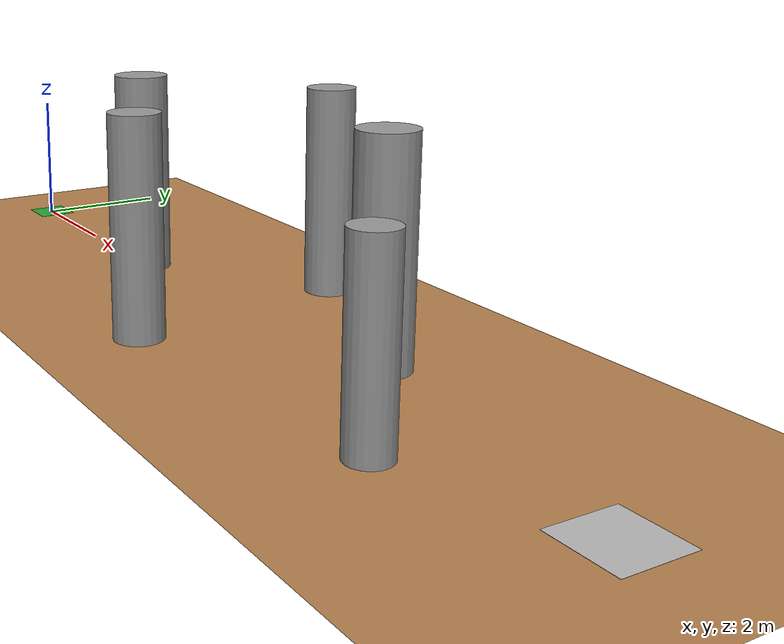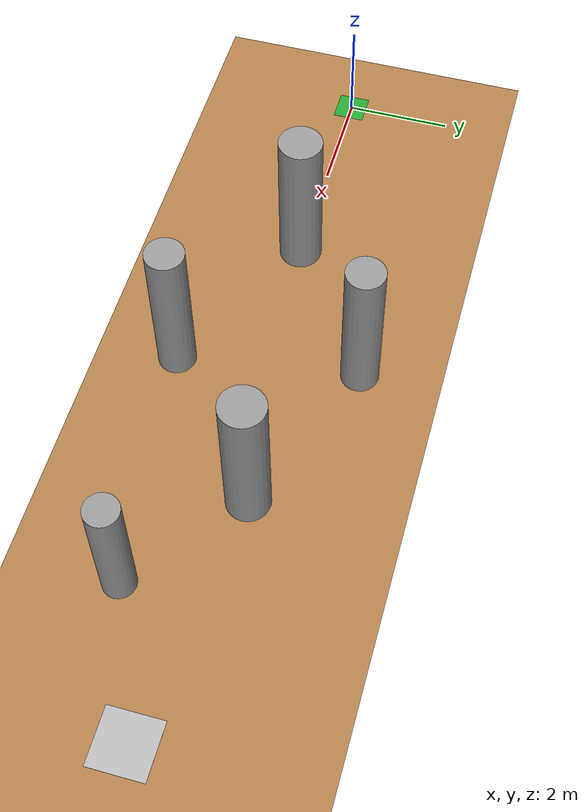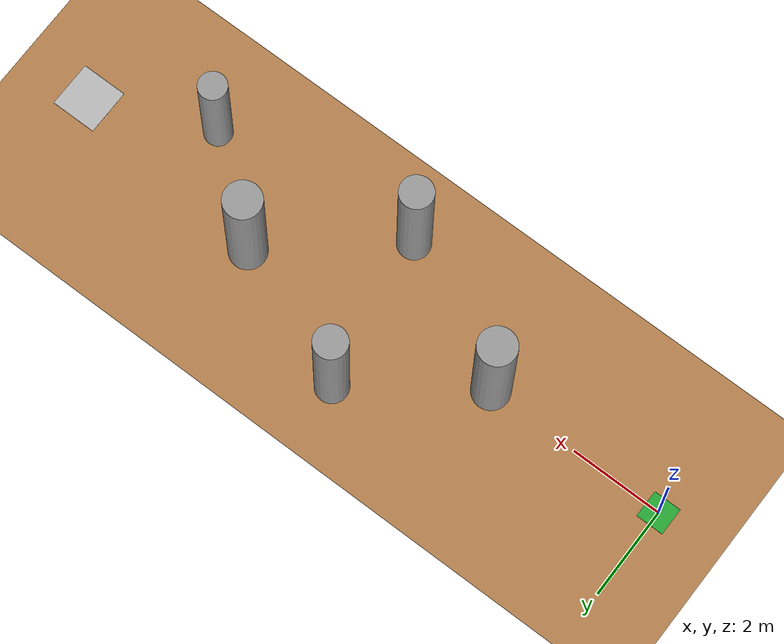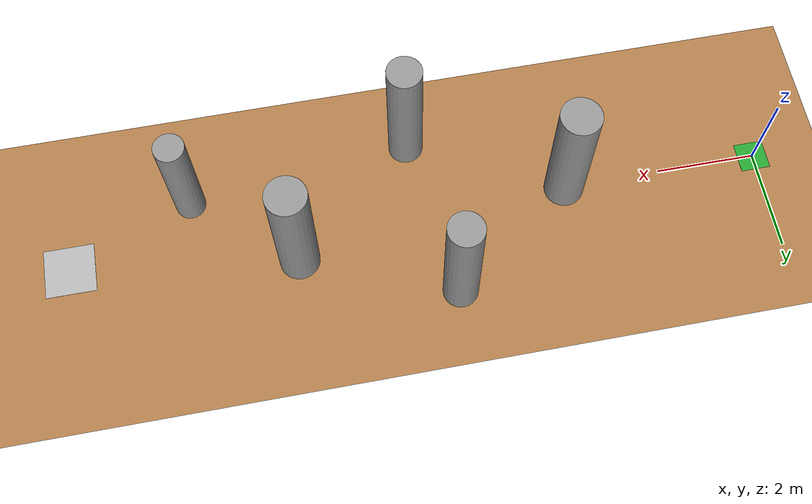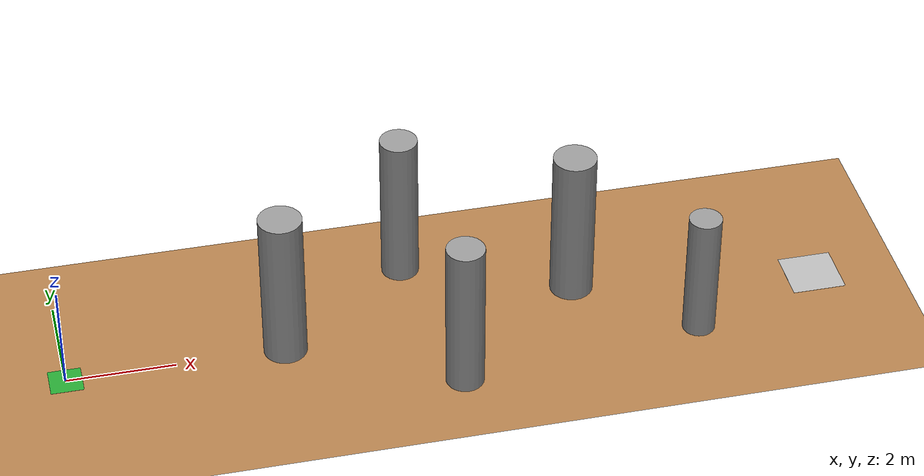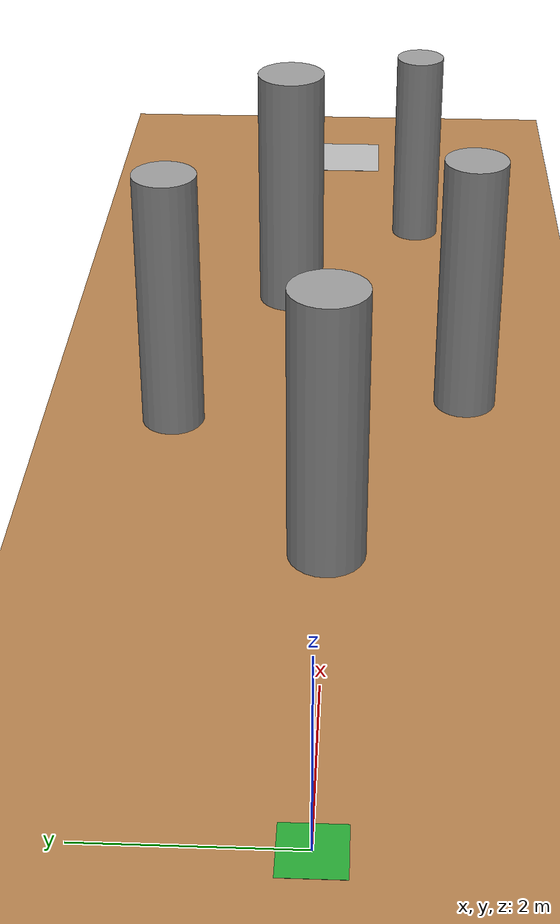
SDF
<?xml version="1.0" ?>
<sdf version="1.6">
  <world name="obstacle_course">

    <!-- Required: bridges ROS topics ↔ Gazebo transport for motor commands and odometry -->
    <plugin name="ros_interface_plugin" filename="librotors_gazebo_ros_interface_plugin.so"/>

    <!-- ── Physics ───────────────────────────────────────────────────────── -->
    <physics type="ode">
      <max_step_size>0.001</max_step_size>
      <real_time_factor>1</real_time_factor>
      <real_time_update_rate>1000</real_time_update_rate>
      <gravity>0 0 -9.81</gravity>
    </physics>

    <!-- ── Environment ───────────────────────────────────────────────────── -->
    <include><uri>model://sun</uri></include>
    <model name="ground_plane">
      <static>true</static>
      <link name="link">
        <collision name="collision">
          <geometry>
            <plane><normal>0 0 1</normal><size>50 50</size></plane>
          </geometry>
        </collision>
        <visual name="visual">
          <geometry>
            <plane><normal>0 0 1</normal><size>50 50</size></plane>
          </geometry>
          <material>
            <script>
              <uri>file://media/materials/scripts/gazebo.material</uri>
              <name>Gazebo/WoodFloor</name>
            </script>
          </material>
        </visual>
      </link>
    </model>

    <!-- ── Start marker: green square at origin ──────────────────────────── -->
    <model name="start_marker">
      <static>true</static>
      <pose>0 0 0.001 0 0 0</pose>
      <link name="link">
        <visual name="visual">
          <geometry><box><size>0.6 0.6 0.002</size></box></geometry>
          <material><script>
            <uri>file://media/materials/scripts/gazebo.material</uri>
            <name>Gazebo/Green</name>
          </script></material>
        </visual>
      </link>
    </model>

    <!-- ── Pillar 1: direct center blocker ───────────────────────────────── -->
    <model name="pillar_1">
      <static>true</static>
      <!-- pose: x y z  roll pitch yaw  (z = half height = 1.5) -->
      <pose>4.0 0.0 1.5 0 0 0</pose>
      <link name="link">
        <visual name="visual">
          <geometry><cylinder><radius>0.40</radius><length>3.0</length></cylinder></geometry>
          <material><script>
            <uri>file://media/materials/scripts/gazebo.material</uri>
            <name>Gazebo/Grey</name>
          </script></material>
        </visual>
        <collision name="collision">
          <geometry><cylinder><radius>0.40</radius><length>3.0</length></cylinder></geometry>
        </collision>
      </link>
    </model>

    <!-- ── Pillar 2: upper-side channel guard ────────────────────────────── -->
    <model name="pillar_2">
      <static>true</static>
      <pose>6.5 1.8 1.5 0 0 0</pose>
      <link name="link">
        <visual name="visual">
          <geometry><cylinder><radius>0.35</radius><length>3.0</length></cylinder></geometry>
          <material><script>
            <uri>file://media/materials/scripts/gazebo.material</uri>
            <name>Gazebo/Grey</name>
          </script></material>
        </visual>
        <collision name="collision">
          <geometry><cylinder><radius>0.35</radius><length>3.0</length></cylinder></geometry>
        </collision>
      </link>
    </model>

    <!-- ── Pillar 3: lower-side channel guard ────────────────────────────── -->
    <model name="pillar_3">
      <static>true</static>
      <pose>7.0 -1.5 1.5 0 0 0</pose>
      <link name="link">
        <visual name="visual">
          <geometry><cylinder><radius>0.35</radius><length>3.0</length></cylinder></geometry>
          <material><script>
            <uri>file://media/materials/scripts/gazebo.material</uri>
            <name>Gazebo/Grey</name>
          </script></material>
        </visual>
        <collision name="collision">
          <geometry><cylinder><radius>0.35</radius><length>3.0</length></cylinder></geometry>
        </collision>
      </link>
    </model>

    <!-- ── Pillar 4: second center blocker ───────────────────────────────── -->
    <model name="pillar_4">
      <static>true</static>
      <pose>9.5 0.6 1.5 0 0 0</pose>
      <link name="link">
        <visual name="visual">
          <geometry><cylinder><radius>0.40</radius><length>3.0</length></cylinder></geometry>
          <material><script>
            <uri>file://media/materials/scripts/gazebo.material</uri>
            <name>Gazebo/Grey</name>
          </script></material>
        </visual>
        <collision name="collision">
          <geometry><cylinder><radius>0.40</radius><length>3.0</length></cylinder></geometry>
        </collision>
      </link>
    </model>

    <!-- ── Pillar 5: final obstacle before tag ───────────────────────────── -->
    <model name="pillar_5">
      <static>true</static>
      <pose>11.5 -1.0 1.25 0 0 0</pose>
      <link name="link">
        <visual name="visual">
          <geometry><cylinder><radius>0.30</radius><length>2.5</length></cylinder></geometry>
          <material><script>
            <uri>file://media/materials/scripts/gazebo.material</uri>
            <name>Gazebo/Grey</name>
          </script></material>
        </visual>
        <collision name="collision">
          <geometry><cylinder><radius>0.30</radius><length>2.5</length></cylinder></geometry>
        </collision>
      </link>
    </model>

    <!-- ── AprilTag landing pad ───────────────────────────────────────────── -->
    <!--
      tag36h11 id=0, 1 m × 1 m flat box on ground.
      Requires: media/materials/textures/tag36_11_00000.png
      (downloaded by Dockerfile from apriltag-imgs repo)
    -->
    <model name="apriltag_pad">
      <static>true</static>
      <pose>14.0 0.0 0.001 0 0 0</pose>
      <link name="link">
        <visual name="visual">
          <geometry><box><size>1.0 1.0 0.002</size></box></geometry>
          <material>
            <script>
              <uri>file://media/materials/scripts/apriltag.material</uri>
              <name>AprilTagPad/tag36_11_00000</name>
            </script>
          </material>
        </visual>
        <collision name="collision">
          <geometry><box><size>1.0 1.0 0.002</size></box></geometry>
        </collision>
      </link>
    </model>

    <!-- ── GUI default camera: bird's-eye view of the full corridor ──────── -->
    <gui fullscreen="0">
      <camera name="user_camera">
        <pose>7 -14 12 0 0.65 1.57</pose>
        <view_controller>orbit</view_controller>
      </camera>
    </gui>

  </world>
</sdf>
